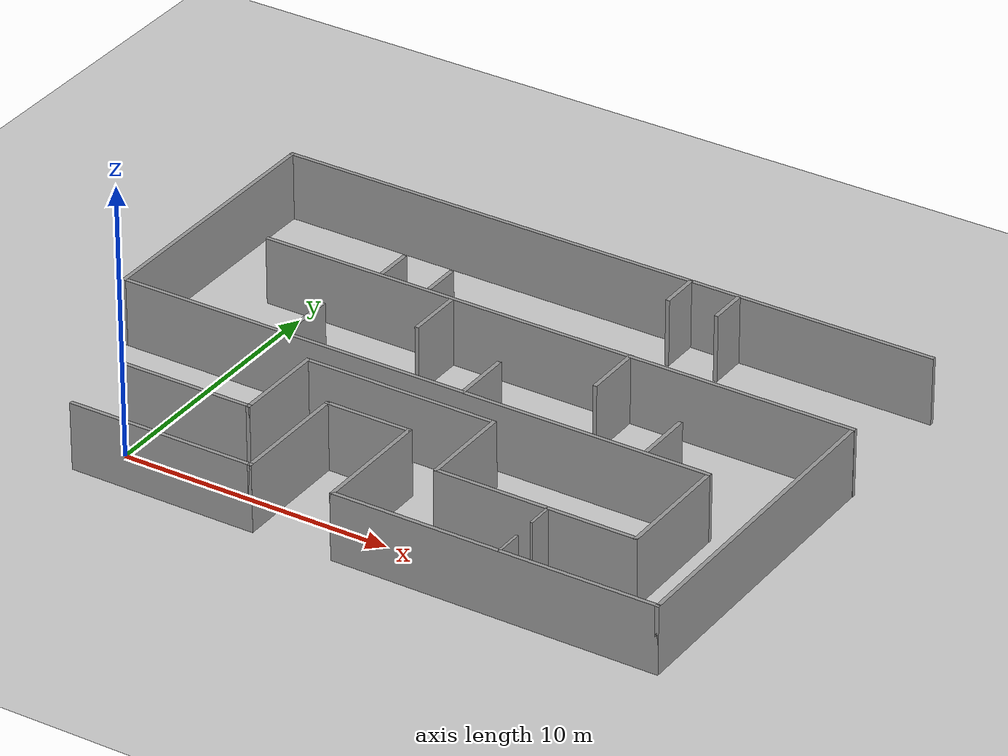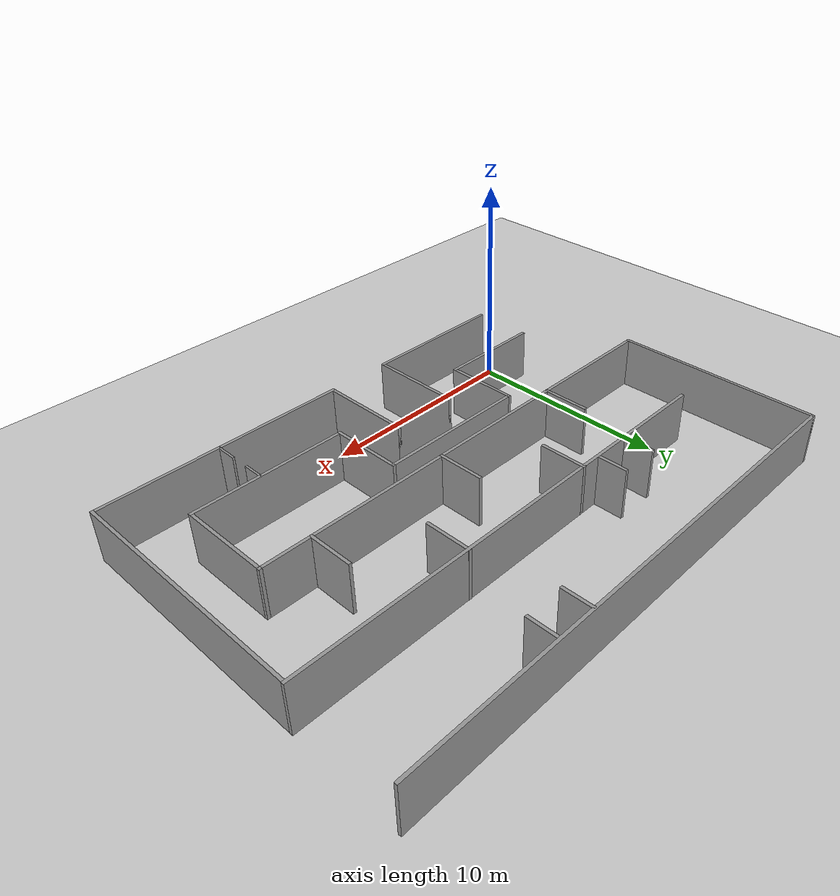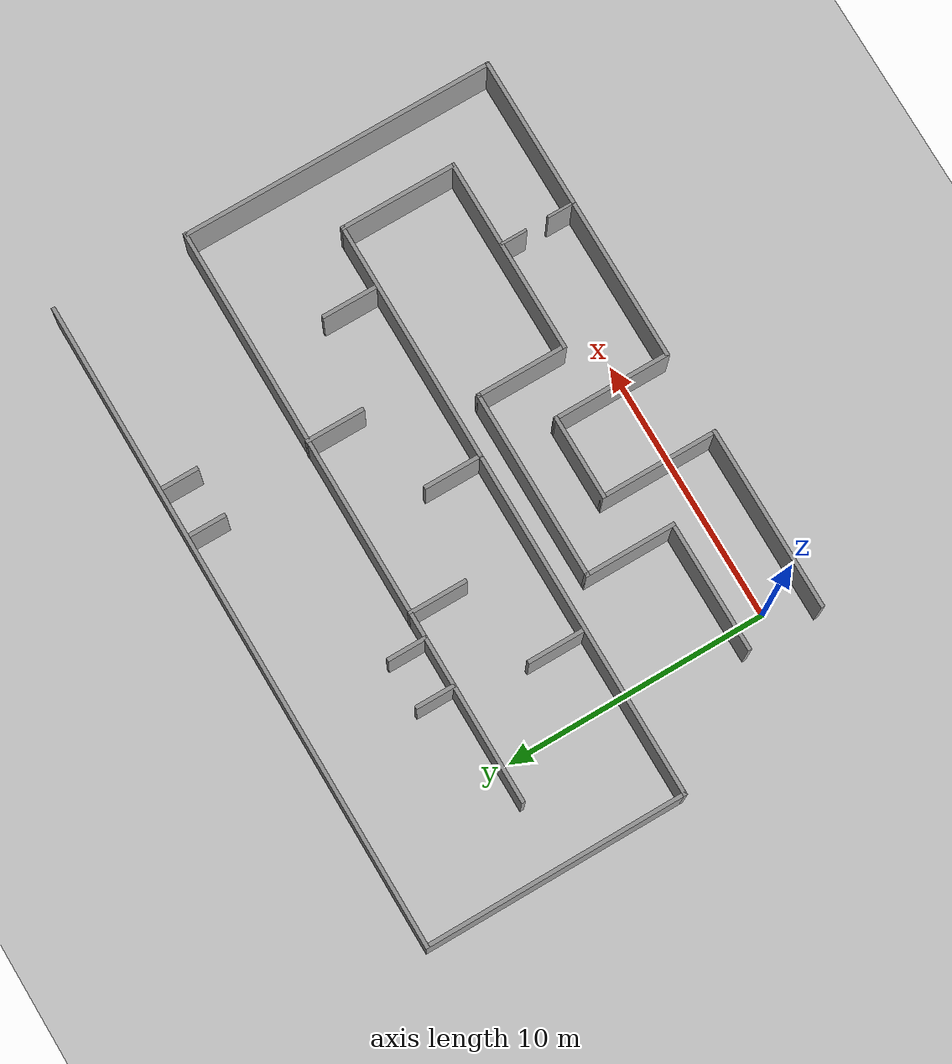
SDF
<?xml version='1.0'?>
<sdf version='1.6'>
  <world name='default'>
    <light name='sun' type='directional'>
      <cast_shadows>1</cast_shadows>
      <pose frame=''>0 0 10 0 -0 0</pose>
      <diffuse>0.8 0.8 0.8 1</diffuse>
      <specular>0.2 0.2 0.2 1</specular>
      <attenuation>
        <range>1000</range>
        <constant>0.9</constant>
        <linear>0.01</linear>
        <quadratic>0.001</quadratic>
      </attenuation>
      <direction>-0.5 0.1 -0.9</direction>
    </light>
    <model name='ground_plane'>
      <static>1</static>
      <link name='link'>
        <collision name='collision'>
          <geometry>
            <plane>
              <normal>0 0 1</normal>
              <size>100 100</size>
            </plane>
          </geometry>
          <surface>
            <contact>
              <collide_bitmask>65535</collide_bitmask>
              <ode/>
            </contact>
            <friction>
              <ode>
                <mu>100</mu>
                <mu2>50</mu2>
              </ode>
              <torsional>
                <ode/>
              </torsional>
            </friction>
            <bounce/>
          </surface>
          <max_contacts>10</max_contacts>
        </collision>
        <visual name='visual'>
          <cast_shadows>0</cast_shadows>
          <geometry>
            <plane>
              <normal>0 0 1</normal>
              <size>100 100</size>
            </plane>
          </geometry>
          <material>
            <script>
              <uri>file://media/materials/scripts/gazebo.material</uri>
              <name>Gazebo/Grey</name>
            </script>
          </material>
        </visual>
        <self_collide>0</self_collide>
        <enable_wind>0</enable_wind>
        <kinematic>0</kinematic>
      </link>
    </model>
    <gravity>0 0 -9.8</gravity>
    <magnetic_field>6e-06 2.3e-05 -4.2e-05</magnetic_field>
    <atmosphere type='adiabatic'/>
    <physics name='default_physics' default='0' type='ode'>
      <max_step_size>0.001</max_step_size>
      <real_time_factor>1</real_time_factor>
      <real_time_update_rate>1000</real_time_update_rate>
    </physics>
    <scene>
      <ambient>0.4 0.4 0.4 1</ambient>
      <background>0.7 0.7 0.7 1</background>
      <grid>false</grid>
      <origin_visual>false</origin_visual>
      <shadows>1</shadows>
    </scene>
    <audio>
      <device>default</device>
    </audio>
    <wind/>
    <spherical_coordinates>
      <surface_model>EARTH_WGS84</surface_model>
      <latitude_deg>0</latitude_deg>
      <longitude_deg>0</longitude_deg>
      <elevation>0</elevation>
      <heading_deg>0</heading_deg>
    </spherical_coordinates>
    <model name='testnovv'>
      <pose frame=''>8.45081 7.03508 0 0 -0 0</pose>
      <link name='Wall_0'>
        <collision name='Wall_0_Collision'>
          <geometry>
            <box>
              <size>7 0.15 2.5</size>
            </box>
          </geometry>
          <pose frame=''>0 0 1.25 0 -0 0</pose>
          <max_contacts>10</max_contacts>
          <surface>
            <contact>
              <ode/>
            </contact>
            <bounce/>
            <friction>
              <torsional>
                <ode/>
              </torsional>
              <ode/>
            </friction>
          </surface>
        </collision>
        <visual name='Wall_0_Visual'>
          <pose frame=''>0 0 1.25 0 -0 0</pose>
          <geometry>
            <box>
              <size>7 0.15 2.5</size>
            </box>
          </geometry>
          <material>
            <script>
              <uri>file://media/materials/scripts/gazebo.material</uri>
              <name>Gazebo/Grey</name>
            </script>
            <ambient>1 1 1 1</ambient>
          </material>
          <meta>
            <layer>0</layer>
          </meta>
        </visual>
        <pose frame=''>-5.9539 -8.525 0 0 -0 0</pose>
        <self_collide>0</self_collide>
        <enable_wind>0</enable_wind>
        <kinematic>0</kinematic>
      </link>
      <link name='Wall_102'>
        <collision name='Wall_102_Collision'>
          <geometry>
            <box>
              <size>2.25 0.15 2.5</size>
            </box>
          </geometry>
          <pose frame=''>0 0 1.25 0 -0 0</pose>
          <max_contacts>10</max_contacts>
          <surface>
            <contact>
              <ode/>
            </contact>
            <bounce/>
            <friction>
              <torsional>
                <ode/>
              </torsional>
              <ode/>
            </friction>
          </surface>
        </collision>
        <visual name='Wall_102_Visual'>
          <pose frame=''>0 0 1.25 0 -0 0</pose>
          <geometry>
            <box>
              <size>2.25 0.15 2.5</size>
            </box>
          </geometry>
          <material>
            <script>
              <uri>file://media/materials/scripts/gazebo.material</uri>
              <name>Gazebo/Grey</name>
            </script>
            <ambient>1 1 1 1</ambient>
          </material>
          <meta>
            <layer>0</layer>
          </meta>
        </visual>
        <pose frame=''>-2.64881 2.34928 0 0 -0 -1.5708</pose>
        <self_collide>0</self_collide>
        <enable_wind>0</enable_wind>
        <kinematic>0</kinematic>
      </link>
      <link name='Wall_106'>
        <collision name='Wall_106_Collision'>
          <geometry>
            <box>
              <size>2.25 0.15 2.5</size>
            </box>
          </geometry>
          <pose frame=''>0 0 1.25 0 -0 0</pose>
          <max_contacts>10</max_contacts>
          <surface>
            <contact>
              <ode/>
            </contact>
            <bounce/>
            <friction>
              <torsional>
                <ode/>
              </torsional>
              <ode/>
            </friction>
          </surface>
        </collision>
        <visual name='Wall_106_Visual'>
          <pose frame=''>0 0 1.25 0 -0 0</pose>
          <geometry>
            <box>
              <size>2.25 0.15 2.5</size>
            </box>
          </geometry>
          <material>
            <script>
              <uri>file://media/materials/scripts/gazebo.material</uri>
              <name>Gazebo/Grey</name>
            </script>
            <ambient>1 1 1 1</ambient>
          </material>
          <meta>
            <layer>0</layer>
          </meta>
        </visual>
        <pose frame=''>-6.06217 -0.235976 0 0 -0 1.5708</pose>
        <self_collide>0</self_collide>
        <enable_wind>0</enable_wind>
        <kinematic>0</kinematic>
      </link>
      <link name='Wall_113'>
        <collision name='Wall_113_Collision'>
          <geometry>
            <box>
              <size>1.5 0.15 2.5</size>
            </box>
          </geometry>
          <pose frame=''>0 0 1.25 0 -0 0</pose>
          <max_contacts>10</max_contacts>
          <surface>
            <contact>
              <ode/>
            </contact>
            <bounce/>
            <friction>
              <torsional>
                <ode/>
              </torsional>
              <ode/>
            </friction>
          </surface>
        </collision>
        <visual name='Wall_113_Visual'>
          <pose frame=''>0 0 1.25 0 -0 0</pose>
          <geometry>
            <box>
              <size>1.5 0.15 2.5</size>
            </box>
          </geometry>
          <material>
            <script>
              <uri>file://media/materials/scripts/gazebo.material</uri>
              <name>Gazebo/Grey</name>
            </script>
            <ambient>1 1 1 1</ambient>
          </material>
          <meta>
            <layer>0</layer>
          </meta>
        </visual>
        <pose frame=''>-5.48084 4.12212 0 0 -0 1.5708</pose>
        <self_collide>0</self_collide>
        <enable_wind>0</enable_wind>
        <kinematic>0</kinematic>
      </link>
      <link name='Wall_115'>
        <collision name='Wall_115_Collision'>
          <geometry>
            <box>
              <size>1.5 0.15 2.5</size>
            </box>
          </geometry>
          <pose frame=''>0 0 1.25 0 -0 0</pose>
          <max_contacts>10</max_contacts>
          <surface>
            <contact>
              <ode/>
            </contact>
            <bounce/>
            <friction>
              <torsional>
                <ode/>
              </torsional>
              <ode/>
            </friction>
          </surface>
        </collision>
        <visual name='Wall_115_Visual'>
          <pose frame=''>0 0 1.25 0 -0 0</pose>
          <geometry>
            <box>
              <size>1.5 0.15 2.5</size>
            </box>
          </geometry>
          <material>
            <script>
              <uri>file://media/materials/scripts/gazebo.material</uri>
              <name>Gazebo/Grey</name>
            </script>
            <ambient>1 1 1 1</ambient>
          </material>
          <meta>
            <layer>0</layer>
          </meta>
        </visual>
        <pose frame=''>-3.63084 4.12212 0 0 -0 -1.5708</pose>
        <self_collide>0</self_collide>
        <enable_wind>0</enable_wind>
        <kinematic>0</kinematic>
      </link>
      <link name='Wall_117'>
        <collision name='Wall_117_Collision'>
          <geometry>
            <box>
              <size>1.5 0.15 2.5</size>
            </box>
          </geometry>
          <pose frame=''>0 0 1.25 0 -0 0</pose>
          <max_contacts>10</max_contacts>
          <surface>
            <contact>
              <ode/>
            </contact>
            <bounce/>
            <friction>
              <torsional>
                <ode/>
              </torsional>
              <ode/>
            </friction>
          </surface>
        </collision>
        <visual name='Wall_117_Visual'>
          <pose frame=''>0 0 1.25 0 -0 0</pose>
          <geometry>
            <box>
              <size>1.5 0.15 2.5</size>
            </box>
          </geometry>
          <material>
            <script>
              <uri>file://media/materials/scripts/gazebo.material</uri>
              <name>Gazebo/Grey</name>
            </script>
            <ambient>1 1 1 1</ambient>
          </material>
          <meta>
            <layer>0</layer>
          </meta>
        </visual>
        <pose frame=''>3.3531 7.792 0 0 -0 -1.5708</pose>
        <self_collide>0</self_collide>
        <enable_wind>0</enable_wind>
        <kinematic>0</kinematic>
      </link>
      <link name='Wall_121'>
        <collision name='Wall_121_Collision'>
          <geometry>
            <box>
              <size>1.5 0.15 2.5</size>
            </box>
          </geometry>
          <pose frame=''>0 0 1.25 0 -0 0</pose>
          <max_contacts>10</max_contacts>
          <surface>
            <contact>
              <ode/>
            </contact>
            <bounce/>
            <friction>
              <torsional>
                <ode/>
              </torsional>
              <ode/>
            </friction>
          </surface>
        </collision>
        <visual name='Wall_121_Visual'>
          <pose frame=''>0 0 1.25 0 -0 0</pose>
          <geometry>
            <box>
              <size>1.5 0.15 2.5</size>
            </box>
          </geometry>
          <material>
            <script>
              <uri>file://media/materials/scripts/gazebo.material</uri>
              <name>Gazebo/Grey</name>
            </script>
            <ambient>1 1 1 1</ambient>
          </material>
          <meta>
            <layer>0</layer>
          </meta>
        </visual>
        <pose frame=''>5.2031 7.792 0 0 -0 1.5708</pose>
        <self_collide>0</self_collide>
        <enable_wind>0</enable_wind>
        <kinematic>0</kinematic>
      </link>
      <link name='Wall_19'>
        <collision name='Wall_19_Collision'>
          <geometry>
            <box>
              <size>5 0.15 2.5</size>
            </box>
          </geometry>
          <pose frame=''>0 0 1.25 0 -0 0</pose>
          <max_contacts>10</max_contacts>
          <surface>
            <contact>
              <ode/>
            </contact>
            <bounce/>
            <friction>
              <torsional>
                <ode/>
              </torsional>
              <ode/>
            </friction>
          </surface>
        </collision>
        <visual name='Wall_19_Visual'>
          <pose frame=''>0 0 1.25 0 -0 0</pose>
          <geometry>
            <box>
              <size>5 0.15 2.5</size>
            </box>
          </geometry>
          <material>
            <script>
              <uri>file://media/materials/scripts/gazebo.material</uri>
              <name>Gazebo/Grey</name>
            </script>
            <ambient>1 1 1 1</ambient>
          </material>
          <meta>
            <layer>0</layer>
          </meta>
        </visual>
        <pose frame=''>-6.9539 -5.675 0 0 -0 0</pose>
        <self_collide>0</self_collide>
        <enable_wind>0</enable_wind>
        <kinematic>0</kinematic>
      </link>
      <link name='Wall_21'>
        <collision name='Wall_21_Collision'>
          <geometry>
            <box>
              <size>3.25 0.15 2.5</size>
            </box>
          </geometry>
          <pose frame=''>0 0 1.25 0 -0 0</pose>
          <max_contacts>10</max_contacts>
          <surface>
            <contact>
              <ode/>
            </contact>
            <bounce/>
            <friction>
              <torsional>
                <ode/>
              </torsional>
              <ode/>
            </friction>
          </surface>
        </collision>
        <visual name='Wall_21_Visual'>
          <pose frame=''>0 0 1.25 0 -0 0</pose>
          <geometry>
            <box>
              <size>3.25 0.15 2.5</size>
            </box>
          </geometry>
          <material>
            <script>
              <uri>file://media/materials/scripts/gazebo.material</uri>
              <name>Gazebo/Grey</name>
            </script>
            <ambient>1 1 1 1</ambient>
          </material>
          <meta>
            <layer>0</layer>
          </meta>
        </visual>
        <pose frame=''>-0.978898 -4.175 0 0 -0 0</pose>
        <self_collide>0</self_collide>
        <enable_wind>0</enable_wind>
        <kinematic>0</kinematic>
      </link>
      <link name='Wall_27'>
        <collision name='Wall_27_Collision'>
          <geometry>
            <box>
              <size>3.5 0.15 2.5</size>
            </box>
          </geometry>
          <pose frame=''>0 0 1.25 0 -0 0</pose>
          <max_contacts>10</max_contacts>
          <surface>
            <contact>
              <ode/>
            </contact>
            <bounce/>
            <friction>
              <torsional>
                <ode/>
              </torsional>
              <ode/>
            </friction>
          </surface>
        </collision>
        <visual name='Wall_27_Visual'>
          <pose frame=''>0 0 1.25 0 -0 0</pose>
          <geometry>
            <box>
              <size>3.5 0.15 2.5</size>
            </box>
          </geometry>
          <material>
            <script>
              <uri>file://media/materials/scripts/gazebo.material</uri>
              <name>Gazebo/Grey</name>
            </script>
            <ambient>1 1 1 1</ambient>
          </material>
          <meta>
            <layer>0</layer>
          </meta>
        </visual>
        <pose frame=''>-4.5289 -4 0 0 -0 1.5708</pose>
        <self_collide>0</self_collide>
        <enable_wind>0</enable_wind>
        <kinematic>0</kinematic>
      </link>
      <link name='Wall_29'>
        <collision name='Wall_29_Collision'>
          <geometry>
            <box>
              <size>7.25 0.15 2.5</size>
            </box>
          </geometry>
          <pose frame=''>0 0 1.25 0 -0 0</pose>
          <max_contacts>10</max_contacts>
          <surface>
            <contact>
              <ode/>
            </contact>
            <bounce/>
            <friction>
              <torsional>
                <ode/>
              </torsional>
              <ode/>
            </friction>
          </surface>
        </collision>
        <visual name='Wall_29_Visual'>
          <pose frame=''>0 0 1.25 0 -0 0</pose>
          <geometry>
            <box>
              <size>7.25 0.15 2.5</size>
            </box>
          </geometry>
          <material>
            <script>
              <uri>file://media/materials/scripts/gazebo.material</uri>
              <name>Gazebo/Grey</name>
            </script>
            <ambient>1 1 1 1</ambient>
          </material>
          <meta>
            <layer>0</layer>
          </meta>
        </visual>
        <pose frame=''>-0.978898 -2.325 0 0 -0 0</pose>
        <self_collide>0</self_collide>
        <enable_wind>0</enable_wind>
        <kinematic>0</kinematic>
      </link>
      <link name='Wall_32'>
        <collision name='Wall_32_Collision'>
          <geometry>
            <box>
              <size>4.5 0.15 2.5</size>
            </box>
          </geometry>
          <pose frame=''>0 0 1.25 0 -0 0</pose>
          <max_contacts>10</max_contacts>
          <surface>
            <contact>
              <ode/>
            </contact>
            <bounce/>
            <friction>
              <torsional>
                <ode/>
              </torsional>
              <ode/>
            </friction>
          </surface>
        </collision>
        <visual name='Wall_32_Visual'>
          <pose frame=''>0 0 1.25 0 -0 0</pose>
          <geometry>
            <box>
              <size>4.5 0.15 2.5</size>
            </box>
          </geometry>
          <material>
            <script>
              <uri>file://media/materials/scripts/gazebo.material</uri>
              <name>Gazebo/Grey</name>
            </script>
            <ambient>1 1 1 1</ambient>
          </material>
          <meta>
            <layer>0</layer>
          </meta>
        </visual>
        <pose frame=''>0.571102 -6.35 0 0 -0 -1.5708</pose>
        <self_collide>0</self_collide>
        <enable_wind>0</enable_wind>
        <kinematic>0</kinematic>
      </link>
      <link name='Wall_34'>
        <collision name='Wall_34_Collision'>
          <geometry>
            <box>
              <size>12 0.15 2.5</size>
            </box>
          </geometry>
          <pose frame=''>0 0 1.25 0 -0 0</pose>
          <max_contacts>10</max_contacts>
          <surface>
            <contact>
              <ode/>
            </contact>
            <bounce/>
            <friction>
              <torsional>
                <ode/>
              </torsional>
              <ode/>
            </friction>
          </surface>
        </collision>
        <visual name='Wall_34_Visual'>
          <pose frame=''>0 0 1.25 0 -0 0</pose>
          <geometry>
            <box>
              <size>12 0.15 2.5</size>
            </box>
          </geometry>
          <material>
            <script>
              <uri>file://media/materials/scripts/gazebo.material</uri>
              <name>Gazebo/Grey</name>
            </script>
            <ambient>1 1 1 1</ambient>
          </material>
          <meta>
            <layer>0</layer>
          </meta>
        </visual>
        <pose frame=''>6.4961 -8.525 0 0 -0 0</pose>
        <self_collide>0</self_collide>
        <enable_wind>0</enable_wind>
        <kinematic>0</kinematic>
      </link>
      <link name='Wall_37'>
        <collision name='Wall_37_Collision'>
          <geometry>
            <box>
              <size>3.5 0.15 2.5</size>
            </box>
          </geometry>
          <pose frame=''>0 0 1.25 0 -0 0</pose>
          <max_contacts>10</max_contacts>
          <surface>
            <contact>
              <ode/>
            </contact>
            <bounce/>
            <friction>
              <torsional>
                <ode/>
              </torsional>
              <ode/>
            </friction>
          </surface>
        </collision>
        <visual name='Wall_37_Visual'>
          <pose frame=''>0 0 1.25 0 -0 0</pose>
          <geometry>
            <box>
              <size>3.5 0.15 2.5</size>
            </box>
          </geometry>
          <material>
            <script>
              <uri>file://media/materials/scripts/gazebo.material</uri>
              <name>Gazebo/Grey</name>
            </script>
            <ambient>1 1 1 1</ambient>
          </material>
          <meta>
            <layer>0</layer>
          </meta>
        </visual>
        <pose frame=''>2.5711 -4 0 0 -0 -1.5708</pose>
        <self_collide>0</self_collide>
        <enable_wind>0</enable_wind>
        <kinematic>0</kinematic>
      </link>
      <link name='Wall_46'>
        <collision name='Wall_46_Collision'>
          <geometry>
            <box>
              <size>7.5 0.15 2.5</size>
            </box>
          </geometry>
          <pose frame=''>0 0 1.25 0 -0 0</pose>
          <max_contacts>10</max_contacts>
          <surface>
            <contact>
              <ode/>
            </contact>
            <bounce/>
            <friction>
              <torsional>
                <ode/>
              </torsional>
              <ode/>
            </friction>
          </surface>
        </collision>
        <visual name='Wall_46_Visual'>
          <pose frame=''>0 0 1.25 0 -0 0</pose>
          <geometry>
            <box>
              <size>7.5 0.15 2.5</size>
            </box>
          </geometry>
          <material>
            <script>
              <uri>file://media/materials/scripts/gazebo.material</uri>
              <name>Gazebo/Grey</name>
            </script>
            <ambient>1 1 1 1</ambient>
          </material>
          <meta>
            <layer>0</layer>
          </meta>
        </visual>
        <pose frame=''>6.2461 -5.675 0 0 -0 0</pose>
        <self_collide>0</self_collide>
        <enable_wind>0</enable_wind>
        <kinematic>0</kinematic>
      </link>
      <link name='Wall_53'>
        <collision name='Wall_53_Collision'>
          <geometry>
            <box>
              <size>4.5 0.15 2.5</size>
            </box>
          </geometry>
          <pose frame=''>0 0 1.25 0 -0 0</pose>
          <max_contacts>10</max_contacts>
          <surface>
            <contact>
              <ode/>
            </contact>
            <bounce/>
            <friction>
              <torsional>
                <ode/>
              </torsional>
              <ode/>
            </friction>
          </surface>
        </collision>
        <visual name='Wall_53_Visual'>
          <pose frame=''>0 0 1.25 0 -0 0</pose>
          <geometry>
            <box>
              <size>4.5 0.15 2.5</size>
            </box>
          </geometry>
          <material>
            <script>
              <uri>file://media/materials/scripts/gazebo.material</uri>
              <name>Gazebo/Grey</name>
            </script>
            <ambient>1 1 1 1</ambient>
          </material>
          <meta>
            <layer>0</layer>
          </meta>
        </visual>
        <pose frame=''>9.9211 -3.5 0 0 -0 1.5708</pose>
        <self_collide>0</self_collide>
        <enable_wind>0</enable_wind>
        <kinematic>0</kinematic>
      </link>
      <link name='Wall_55'>
        <collision name='Wall_55_Collision'>
          <geometry>
            <box>
              <size>1 0.1 2.5</size>
            </box>
          </geometry>
          <pose frame=''>0 0 1.25 0 -0 0</pose>
          <max_contacts>10</max_contacts>
          <surface>
            <contact>
              <ode/>
            </contact>
            <bounce/>
            <friction>
              <torsional>
                <ode/>
              </torsional>
              <ode/>
            </friction>
          </surface>
        </collision>
        <visual name='Wall_55_Visual'>
          <pose frame=''>0 0 1.25 0 -0 0</pose>
          <geometry>
            <box>
              <size>1 0.1 2.5</size>
            </box>
          </geometry>
          <material>
            <script>
              <uri>file://media/materials/scripts/gazebo.material</uri>
              <name>Gazebo/Grey</name>
            </script>
            <ambient>1 1 1 1</ambient>
          </material>
          <meta>
            <layer>0</layer>
          </meta>
        </visual>
        <pose frame=''>6.7021 -6.16 0 0 -0 -1.5708</pose>
        <self_collide>0</self_collide>
        <enable_wind>0</enable_wind>
        <kinematic>0</kinematic>
      </link>
      <link name='Wall_58'>
        <collision name='Wall_58_Collision'>
          <geometry>
            <box>
              <size>1.05 0.1 2.5</size>
            </box>
          </geometry>
          <pose frame=''>0 0 1.25 0 -0 0</pose>
          <max_contacts>10</max_contacts>
          <surface>
            <contact>
              <ode/>
            </contact>
            <bounce/>
            <friction>
              <torsional>
                <ode/>
              </torsional>
              <ode/>
            </friction>
          </surface>
        </collision>
        <visual name='Wall_58_Visual'>
          <pose frame=''>0 0 1.25 0 -0 0</pose>
          <geometry>
            <box>
              <size>1.05 0.1 2.5</size>
            </box>
          </geometry>
          <material>
            <script>
              <uri>file://media/materials/scripts/gazebo.material</uri>
              <name>Gazebo/Grey</name>
            </script>
            <ambient>1 1 1 1</ambient>
          </material>
          <meta>
            <layer>0</layer>
          </meta>
        </visual>
        <pose frame=''>6.7181 -8.033 0 0 -0 1.5708</pose>
        <self_collide>0</self_collide>
        <enable_wind>0</enable_wind>
        <kinematic>0</kinematic>
      </link>
      <link name='Wall_64'>
        <collision name='Wall_64_Collision'>
          <geometry>
            <box>
              <size>22.5 0.15 2.5</size>
            </box>
          </geometry>
          <pose frame=''>0 0 1.25 0 -0 0</pose>
          <max_contacts>10</max_contacts>
          <surface>
            <contact>
              <ode/>
            </contact>
            <bounce/>
            <friction>
              <torsional>
                <ode/>
              </torsional>
              <ode/>
            </friction>
          </surface>
        </collision>
        <visual name='Wall_64_Visual'>
          <pose frame=''>0 0 1.25 0 -0 0</pose>
          <geometry>
            <box>
              <size>22.5 0.15 2.5</size>
            </box>
          </geometry>
          <material>
            <script>
              <uri>file://media/materials/scripts/gazebo.material</uri>
              <name>Gazebo/Grey</name>
            </script>
            <ambient>1 1 1 1</ambient>
          </material>
          <meta>
            <layer>0</layer>
          </meta>
        </visual>
        <pose frame=''>1.2539 3.39624 0 0 -0 3.14159</pose>
        <self_collide>0</self_collide>
        <enable_wind>0</enable_wind>
        <kinematic>0</kinematic>
      </link>
      <link name='Wall_67'>
        <collision name='Wall_67_Collision'>
          <geometry>
            <box>
              <size>22.5 0.15 2.5</size>
            </box>
          </geometry>
          <pose frame=''>0 0 1.25 0 -0 0</pose>
          <max_contacts>10</max_contacts>
          <surface>
            <contact>
              <ode/>
            </contact>
            <bounce/>
            <friction>
              <torsional>
                <ode/>
              </torsional>
              <ode/>
            </friction>
          </surface>
        </collision>
        <visual name='Wall_67_Visual'>
          <pose frame=''>0 0 1.25 0 -0 0</pose>
          <geometry>
            <box>
              <size>22.5 0.15 2.5</size>
            </box>
          </geometry>
          <material>
            <script>
              <uri>file://media/materials/scripts/gazebo.material</uri>
              <name>Gazebo/Grey</name>
            </script>
            <ambient>1 1 1 1</ambient>
          </material>
          <meta>
            <layer>0</layer>
          </meta>
        </visual>
        <pose frame=''>-1.2539 -1.325 0 0 -0 3.14159</pose>
        <self_collide>0</self_collide>
        <enable_wind>0</enable_wind>
        <kinematic>0</kinematic>
      </link>
      <link name='Wall_73'>
        <collision name='Wall_73_Collision'>
          <geometry>
            <box>
              <size>10 0.15 2.5</size>
            </box>
          </geometry>
          <pose frame=''>0 0 1.25 0 -0 0</pose>
          <max_contacts>10</max_contacts>
          <surface>
            <contact>
              <ode/>
            </contact>
            <bounce/>
            <friction>
              <torsional>
                <ode/>
              </torsional>
              <ode/>
            </friction>
          </surface>
        </collision>
        <visual name='Wall_73_Visual'>
          <pose frame=''>0 0 1.25 0 -0 0</pose>
          <geometry>
            <box>
              <size>10 0.15 2.5</size>
            </box>
          </geometry>
          <material>
            <script>
              <uri>file://media/materials/scripts/gazebo.material</uri>
              <name>Gazebo/Grey</name>
            </script>
            <ambient>1 1 1 1</ambient>
          </material>
          <meta>
            <layer>0</layer>
          </meta>
        </visual>
        <pose frame=''>-12.4289 3.6 0 0 -0 1.5708</pose>
        <self_collide>0</self_collide>
        <enable_wind>0</enable_wind>
        <kinematic>0</kinematic>
      </link>
      <link name='Wall_76'>
        <collision name='Wall_76_Collision'>
          <geometry>
            <box>
              <size>12 0.15 2.5</size>
            </box>
          </geometry>
          <pose frame=''>0 0 1.25 0 -0 0</pose>
          <max_contacts>10</max_contacts>
          <surface>
            <contact>
              <ode/>
            </contact>
            <bounce/>
            <friction>
              <torsional>
                <ode/>
              </torsional>
              <ode/>
            </friction>
          </surface>
        </collision>
        <visual name='Wall_76_Visual'>
          <pose frame=''>0 0 1.25 0 -0 0</pose>
          <geometry>
            <box>
              <size>12 0.15 2.5</size>
            </box>
          </geometry>
          <material>
            <script>
              <uri>file://media/materials/scripts/gazebo.material</uri>
              <name>Gazebo/Grey</name>
            </script>
            <ambient>1 1 1 1</ambient>
          </material>
          <meta>
            <layer>0</layer>
          </meta>
        </visual>
        <pose frame=''>12.4211 -2.6 0 0 -0 1.5708</pose>
        <self_collide>0</self_collide>
        <enable_wind>0</enable_wind>
        <kinematic>0</kinematic>
      </link>
      <link name='Wall_8'>
        <collision name='Wall_8_Collision'>
          <geometry>
            <box>
              <size>4.5 0.15 2.5</size>
            </box>
          </geometry>
          <pose frame=''>0 0 1.25 0 -0 0</pose>
          <max_contacts>10</max_contacts>
          <surface>
            <contact>
              <ode/>
            </contact>
            <bounce/>
            <friction>
              <torsional>
                <ode/>
              </torsional>
              <ode/>
            </friction>
          </surface>
        </collision>
        <visual name='Wall_8_Visual'>
          <pose frame=''>0 0 1.25 0 -0 0</pose>
          <geometry>
            <box>
              <size>4.5 0.15 2.5</size>
            </box>
          </geometry>
          <material>
            <script>
              <uri>file://media/materials/scripts/gazebo.material</uri>
              <name>Gazebo/Grey</name>
            </script>
            <ambient>1 1 1 1</ambient>
          </material>
          <meta>
            <layer>0</layer>
          </meta>
        </visual>
        <pose frame=''>-2.5289 -6.35 0 0 -0 1.5708</pose>
        <self_collide>0</self_collide>
        <enable_wind>0</enable_wind>
        <kinematic>0</kinematic>
      </link>
      <link name='Wall_80'>
        <collision name='Wall_80_Collision'>
          <geometry>
            <box>
              <size>25 0.15 2.5</size>
            </box>
          </geometry>
          <pose frame=''>0 0 1.25 0 -0 0</pose>
          <max_contacts>10</max_contacts>
          <surface>
            <contact>
              <ode/>
            </contact>
            <bounce/>
            <friction>
              <torsional>
                <ode/>
              </torsional>
              <ode/>
            </friction>
          </surface>
        </collision>
        <visual name='Wall_80_Visual'>
          <pose frame=''>0 0 1.25 0 -0 0</pose>
          <geometry>
            <box>
              <size>25 0.15 2.5</size>
            </box>
          </geometry>
          <material>
            <script>
              <uri>file://media/materials/scripts/gazebo.material</uri>
              <name>Gazebo/Grey</name>
            </script>
            <ambient>1 1 1 1</ambient>
          </material>
          <meta>
            <layer>0</layer>
          </meta>
        </visual>
        <pose frame=''>-0.003898 8.525 0 0 -0 0</pose>
        <self_collide>0</self_collide>
        <enable_wind>0</enable_wind>
        <kinematic>0</kinematic>
      </link>
      <link name='Wall_88'>
        <collision name='Wall_88_Collision'>
          <geometry>
            <box>
              <size>2.25 0.15 2.5</size>
            </box>
          </geometry>
          <pose frame=''>0 0 1.25 0 -0 0</pose>
          <max_contacts>10</max_contacts>
          <surface>
            <contact>
              <ode/>
            </contact>
            <bounce/>
            <friction>
              <torsional>
                <ode/>
              </torsional>
              <ode/>
            </friction>
          </surface>
        </collision>
        <visual name='Wall_88_Visual'>
          <pose frame=''>0 0 1.25 0 -0 0</pose>
          <geometry>
            <box>
              <size>2.25 0.15 2.5</size>
            </box>
          </geometry>
          <material>
            <script>
              <uri>file://media/materials/scripts/gazebo.material</uri>
              <name>Gazebo/Grey</name>
            </script>
            <ambient>1 1 1 1</ambient>
          </material>
          <meta>
            <layer>0</layer>
          </meta>
        </visual>
        <pose frame=''>7.57827 -0.274912 0 0 -0 1.5708</pose>
        <self_collide>0</self_collide>
        <enable_wind>0</enable_wind>
        <kinematic>0</kinematic>
      </link>
      <link name='Wall_92'>
        <collision name='Wall_92_Collision'>
          <geometry>
            <box>
              <size>2.25 0.15 2.5</size>
            </box>
          </geometry>
          <pose frame=''>0 0 1.25 0 -0 0</pose>
          <max_contacts>10</max_contacts>
          <surface>
            <contact>
              <ode/>
            </contact>
            <bounce/>
            <friction>
              <torsional>
                <ode/>
              </torsional>
              <ode/>
            </friction>
          </surface>
        </collision>
        <visual name='Wall_92_Visual'>
          <pose frame=''>0 0 1.25 0 -0 0</pose>
          <geometry>
            <box>
              <size>2.25 0.15 2.5</size>
            </box>
          </geometry>
          <material>
            <script>
              <uri>file://media/materials/scripts/gazebo.material</uri>
              <name>Gazebo/Grey</name>
            </script>
            <ambient>1 1 1 1</ambient>
          </material>
          <meta>
            <layer>0</layer>
          </meta>
        </visual>
        <pose frame=''>4.13896 2.36225 0 0 -0 -1.5708</pose>
        <self_collide>0</self_collide>
        <enable_wind>0</enable_wind>
        <kinematic>0</kinematic>
      </link>
      <link name='Wall_98'>
        <collision name='Wall_98_Collision'>
          <geometry>
            <box>
              <size>2.25 0.15 2.5</size>
            </box>
          </geometry>
          <pose frame=''>0 0 1.25 0 -0 0</pose>
          <max_contacts>10</max_contacts>
          <surface>
            <contact>
              <ode/>
            </contact>
            <bounce/>
            <friction>
              <torsional>
                <ode/>
              </torsional>
              <ode/>
            </friction>
          </surface>
        </collision>
        <visual name='Wall_98_Visual'>
          <pose frame=''>0 0 1.25 0 -0 0</pose>
          <geometry>
            <box>
              <size>2.25 0.15 2.5</size>
            </box>
          </geometry>
          <material>
            <script>
              <uri>file://media/materials/scripts/gazebo.material</uri>
              <name>Gazebo/Grey</name>
            </script>
            <ambient>1 1 1 1</ambient>
          </material>
          <meta>
            <layer>0</layer>
          </meta>
        </visual>
        <pose frame=''>0.764541 -0.261933 0 0 -0 1.5708</pose>
        <self_collide>0</self_collide>
        <enable_wind>0</enable_wind>
        <kinematic>0</kinematic>
      </link>
      <static>1</static>
    </model>
  </world>
</sdf>
